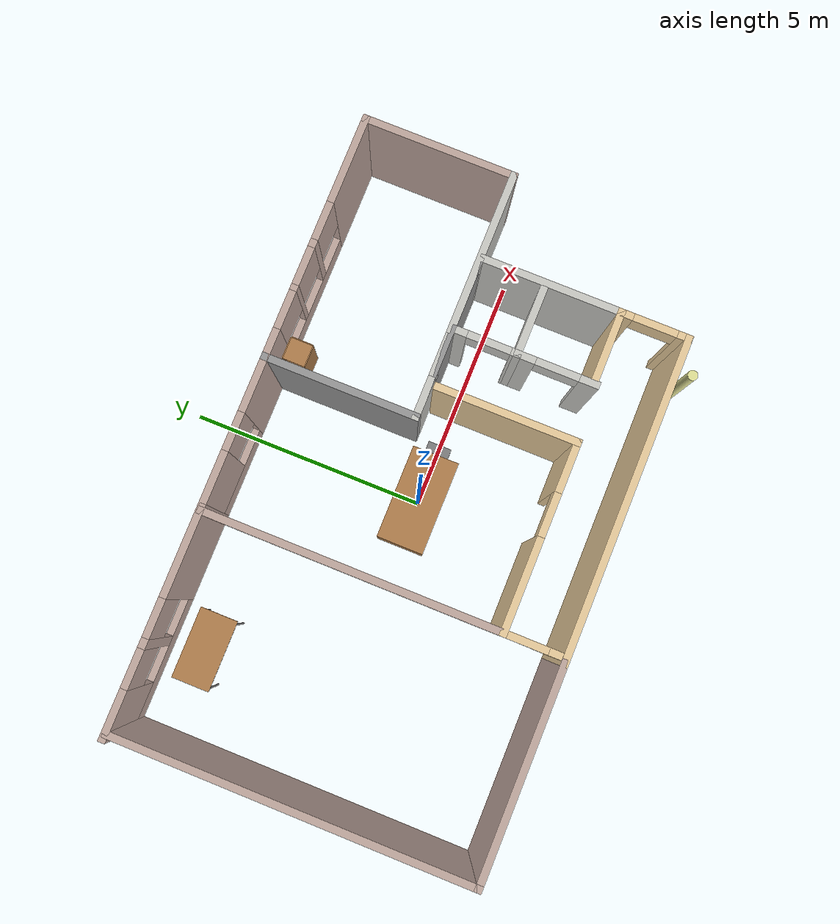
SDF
<sdf version="1.7">
 <world name="default">
  <physics type="ode">
   <max_step_size>0.001</max_step_size>
   <real_time_factor>1</real_time_factor>
   <real_time_update_rate>1000</real_time_update_rate>
  </physics>
  <gravity>0 0 -9.8</gravity>
  <scene><ambient>0.4 0.4 0.4 1</ambient><background>0.7 0.7 0.7 1</background><shadows>1</shadows></scene>
  <model name="ground_plane">
   <static>1</static>
   <link name="link">
    <collision name="collision">
     <geometry><plane><normal>0 0 1</normal><size>100 100</size></plane></geometry>
     <surface><friction><ode><mu>100</mu><mu2>50</mu2></ode></friction></surface>
    </collision>
   </link>
  </model>
  <model name="apartment24">
   <pose>0 -0 -3.2e-05 -9e-06 -0 -0</pose>
   <link name="Wall_0">
    <collision name="Wall_0_Collision">
     <geometry><box><size>6.75 0.15 2.5</size></box></geometry>
     <pose>0 0 1.25 0 -0 0</pose>
    </collision>
    <visual name="Wall_0_Visual">
     <pose>0 0 1.25 0 -0 0</pose>
     <geometry><box><size>6.75 0.15 2.5</size></box></geometry>
     <material>
      <script><uri>file://media/materials/scripts/gazebo.material</uri><name>Gazebo/Grey</name></script>
      <ambient>0.921569 0.807843 0.615686 1</ambient>
     </material>
     <meta><layer>0</layer></meta>
    </visual>
    <pose>1.34363 -3.68811 0 0 -0 0</pose>
    <inertial>
     <inertia><ixx>1</ixx><ixy>0</ixy><ixz>0</ixz><iyy>1</iyy><iyz>0</iyz><izz>1</izz></inertia>
     <mass>1</mass>
    </inertial>
   </link>
   <link name="Wall_1">
    <pose>4.64363 -2.99989 0 0 -0 1.5708</pose>
    <visual name="Wall_1_Visual_0">
     <pose>-0.611737 0 1.25 0 -0 0</pose>
     <geometry><box><size>0.302975 0.15 2.5</size></box></geometry>
     <material>
      <script><uri>file://media/materials/scripts/gazebo.material</uri><name>Gazebo/Grey</name></script>
      <ambient>0.921569 0.807843 0.615686 1</ambient>
     </material>
     <meta><layer>0</layer></meta>
    </visual>
    <collision name="Wall_1_Collision_0">
     <geometry><box><size>0.302975 0.15 2.5</size></box></geometry>
     <pose>-0.611737 0 1.25 0 -0 0</pose>
    </collision>
    <visual name="Wall_1_Visual_1">
     <pose>0.601488 0 1.25 0 -0 0</pose>
     <geometry><box><size>0.323475 0.15 2.5</size></box></geometry>
     <material>
      <script><uri>file://media/materials/scripts/gazebo.material</uri><name>Gazebo/Grey</name></script>
      <ambient>0.921569 0.807843 0.615686 1</ambient>
     </material>
     <meta><layer>0</layer></meta>
    </visual>
    <collision name="Wall_1_Collision_1">
     <geometry><box><size>0.323475 0.15 2.5</size></box></geometry>
     <pose>0.601488 0 1.25 0 -0 0</pose>
    </collision>
    <visual name="Wall_1_Visual_2">
     <pose>-0.01025 0 2.25 0 -0 0</pose>
     <geometry><box><size>0.9 0.15 0.5</size></box></geometry>
     <material>
      <script><uri>file://media/materials/scripts/gazebo.material</uri><name>Gazebo/Grey</name></script>
      <ambient>0.921569 0.807843 0.615686 1</ambient>
     </material>
     <meta><layer>0</layer></meta>
    </visual>
    <collision name="Wall_1_Collision_2">
     <geometry><box><size>0.9 0.15 0.5</size></box></geometry>
     <pose>-0.01025 0 2.25 0 -0 0</pose>
    </collision>
    <inertial>
     <inertia><ixx>1</ixx><ixy>0</ixy><ixz>0</ixz><iyy>1</iyy><iyz>0</iyz><izz>1</izz></inertia>
     <mass>1</mass>
    </inertial>
   </link>
   <link name="Wall_10">
    <pose>3.15 -1.56189 0 0 -0 -1.5708</pose>
    <visual name="Wall_10_Visual_0">
     <pose>-0.652525 0 1.25 0 -0 0</pose>
     <geometry><box><size>0.44495 0.15 2.5</size></box></geometry>
     <material>
      <script><uri>file://media/materials/scripts/gazebo.material</uri><name>Gazebo/CeilingTiled</name></script>
      <ambient>1 1 1 1</ambient>
     </material>
     <meta><layer>0</layer></meta>
    </visual>
    <collision name="Wall_10_Collision_0">
     <geometry><box><size>0.44495 0.15 2.5</size></box></geometry>
     <pose>-0.652525 0 1.25 0 -0 0</pose>
    </collision>
    <visual name="Wall_10_Visual_1">
     <pose>0.672475 0 1.25 0 -0 0</pose>
     <geometry><box><size>0.40505 0.15 2.5</size></box></geometry>
     <material>
      <script><uri>file://media/materials/scripts/gazebo.material</uri><name>Gazebo/CeilingTiled</name></script>
      <ambient>1 1 1 1</ambient>
     </material>
     <meta><layer>0</layer></meta>
    </visual>
    <collision name="Wall_10_Collision_1">
     <geometry><box><size>0.40505 0.15 2.5</size></box></geometry>
     <pose>0.672475 0 1.25 0 -0 0</pose>
    </collision>
    <visual name="Wall_10_Visual_2">
     <pose>0.01995 0 2.25 0 -0 0</pose>
     <geometry><box><size>0.9 0.15 0.5</size></box></geometry>
     <material>
      <script><uri>file://media/materials/scripts/gazebo.material</uri><name>Gazebo/CeilingTiled</name></script>
      <ambient>1 1 1 1</ambient>
     </material>
     <meta><layer>0</layer></meta>
    </visual>
    <collision name="Wall_10_Collision_2">
     <geometry><box><size>0.9 0.15 0.5</size></box></geometry>
     <pose>0.01995 0 2.25 0 -0 0</pose>
    </collision>
    <inertial>
     <inertia><ixx>1</ixx><ixy>0</ixy><ixz>0</ixz><iyy>1</iyy><iyz>0</iyz><izz>1</izz></inertia>
     <mass>1</mass>
    </inertial>
   </link>
   <link name="Wall_12">
    <collision name="Wall_12_Collision">
     <geometry><box><size>2 0.15 2.5</size></box></geometry>
     <pose>0 0 1.25 0 -0 0</pose>
    </collision>
    <visual name="Wall_12_Visual">
     <pose>0 0 1.25 0 -0 0</pose>
     <geometry><box><size>2 0.15 2.5</size></box></geometry>
     <material>
      <script><uri>file://media/materials/scripts/gazebo.material</uri><name>Gazebo/Grey</name></script>
      <ambient>1 1 1 1</ambient>
     </material>
     <meta><layer>0</layer></meta>
    </visual>
    <pose>2.225 0.588112 0 0 -0 3.14159</pose>
    <inertial>
     <inertia><ixx>1</ixx><ixy>0</ixy><ixz>0</ixz><iyy>1</iyy><iyz>0</iyz><izz>1</izz></inertia>
     <mass>1</mass>
    </inertial>
   </link>
   <link name="Wall_13">
    <pose>3.85 0.588112 0 0 -0 0</pose>
    <visual name="Wall_13_Visual_0">
     <pose>-2.17131 0 1.25 0 -0 0</pose>
     <geometry><box><size>0.907375 0.15 2.5</size></box></geometry>
     <material>
      <script><uri>file://media/materials/scripts/gazebo.material</uri><name>Gazebo/CeilingTiled</name></script>
      <ambient>0.760784 0.662745 0.627451 1</ambient>
     </material>
     <meta><layer>0</layer></meta>
    </visual>
    <collision name="Wall_13_Collision_0">
     <geometry><box><size>0.907375 0.15 2.5</size></box></geometry>
     <pose>-2.17131 0 1.25 0 -0 0</pose>
    </collision>
    <visual name="Wall_13_Visual_1">
     <pose>0.903687 0 1.25 0 -0 0</pose>
     <geometry><box><size>3.44263 0.15 2.5</size></box></geometry>
     <material>
      <script><uri>file://media/materials/scripts/gazebo.material</uri><name>Gazebo/CeilingTiled</name></script>
      <ambient>0.760784 0.662745 0.627451 1</ambient>
     </material>
     <meta><layer>0</layer></meta>
    </visual>
    <collision name="Wall_13_Collision_1">
     <geometry><box><size>3.44263 0.15 2.5</size></box></geometry>
     <pose>0.903687 0 1.25 0 -0 0</pose>
    </collision>
    <visual name="Wall_13_Visual_2">
     <pose>-1.26763 0 2.25 0 -0 0</pose>
     <geometry><box><size>0.9 0.15 0.5</size></box></geometry>
     <material>
      <script><uri>file://media/materials/scripts/gazebo.material</uri><name>Gazebo/CeilingTiled</name></script>
      <ambient>0.760784 0.662745 0.627451 1</ambient>
     </material>
     <meta><layer>0</layer></meta>
    </visual>
    <collision name="Wall_13_Collision_2">
     <geometry><box><size>0.9 0.15 0.5</size></box></geometry>
     <pose>-1.26763 0 2.25 0 -0 0</pose>
    </collision>
    <inertial>
     <inertia><ixx>1</ixx><ixy>0</ixy><ixz>0</ixz><iyy>1</iyy><iyz>0</iyz><izz>1</izz></inertia>
     <mass>1</mass>
    </inertial>
   </link>
   <link name="Wall_15">
    <collision name="Wall_15_Collision">
     <geometry><box><size>3.25 0.15 2.5</size></box></geometry>
     <pose>0 0 1.25 0 -0 0</pose>
    </collision>
    <visual name="Wall_15_Visual">
     <pose>0 0 1.25 0 -0 0</pose>
     <geometry><box><size>3.25 0.15 2.5</size></box></geometry>
     <material>
      <script><uri>file://media/materials/scripts/gazebo.material</uri><name>Gazebo/Grey</name></script>
      <ambient>0.760784 0.662745 0.627451 1</ambient>
     </material>
     <meta><layer>0</layer></meta>
    </visual>
    <pose>6.4 2.13811 0 0 -0 1.5708</pose>
    <inertial>
     <inertia><ixx>1</ixx><ixy>0</ixy><ixz>0</ixz><iyy>1</iyy><iyz>0</iyz><izz>1</izz></inertia>
     <mass>1</mass>
    </inertial>
   </link>
   <link name="Wall_16">
    <pose>3.85 3.68811 0 0 -0 3.14159</pose>
    <visual name="Wall_16_Visual_0">
     <pose>-1.6788 0 1.25 0 -0 0</pose>
     <geometry><box><size>1.8924 0.15 2.5</size></box></geometry>
     <material>
      <script><uri>file://media/materials/scripts/gazebo.material</uri><name>Gazebo/Grey</name></script>
      <ambient>0.760784 0.662745 0.627451 1</ambient>
     </material>
     <meta><layer>0</layer></meta>
    </visual>
    <collision name="Wall_16_Collision_0">
     <geometry><box><size>1.8924 0.15 2.5</size></box></geometry>
     <pose>-1.6788 0 1.25 0 -0 0</pose>
    </collision>
    <visual name="Wall_16_Visual_1">
     <pose>0.9462 0 0.25 0 -0 0</pose>
     <geometry><box><size>3.3576 0.15 0.5</size></box></geometry>
     <material>
      <script><uri>file://media/materials/scripts/gazebo.material</uri><name>Gazebo/Grey</name></script>
      <ambient>0.760784 0.662745 0.627451 1</ambient>
     </material>
     <meta><layer>0</layer></meta>
    </visual>
    <collision name="Wall_16_Collision_1">
     <geometry><box><size>3.3576 0.15 0.5</size></box></geometry>
     <pose>0.9462 0 0.25 0 -0 0</pose>
    </collision>
    <visual name="Wall_16_Visual_2">
     <pose>0.150113 0 1.5 0 -0 0</pose>
     <geometry><box><size>0.165425 0.15 2</size></box></geometry>
     <material>
      <script><uri>file://media/materials/scripts/gazebo.material</uri><name>Gazebo/Grey</name></script>
      <ambient>0.760784 0.662745 0.627451 1</ambient>
     </material>
     <meta><layer>0</layer></meta>
    </visual>
    <collision name="Wall_16_Collision_2">
     <geometry><box><size>0.165425 0.15 2</size></box></geometry>
     <pose>0.150113 0 1.5 0 -0 0</pose>
    </collision>
    <visual name="Wall_16_Visual_3">
     <pose>1.0957 0 1.5 0 -0 0</pose>
     <geometry><box><size>0.12575 0.15 2</size></box></geometry>
     <material>
      <script><uri>file://media/materials/scripts/gazebo.material</uri><name>Gazebo/Grey</name></script>
      <ambient>0.760784 0.662745 0.627451 1</ambient>
     </material>
     <meta><layer>0</layer></meta>
    </visual>
    <collision name="Wall_16_Collision_3">
     <geometry><box><size>0.12575 0.15 2</size></box></geometry>
     <pose>1.0957 0 1.5 0 -0 0</pose>
    </collision>
    <visual name="Wall_16_Visual_4">
     <pose>2.29179 0 1.5 0 -0 0</pose>
     <geometry><box><size>0.666425 0.15 2</size></box></geometry>
     <material>
      <script><uri>file://media/materials/scripts/gazebo.material</uri><name>Gazebo/Grey</name></script>
      <ambient>0.760784 0.662745 0.627451 1</ambient>
     </material>
     <meta><layer>0</layer></meta>
    </visual>
    <collision name="Wall_16_Collision_4">
     <geometry><box><size>0.666425 0.15 2</size></box></geometry>
     <pose>2.29179 0 1.5 0 -0 0</pose>
    </collision>
    <visual name="Wall_16_Visual_5">
     <pose>-0.3326 0 1.9 0 -0 0</pose>
     <geometry><box><size>0.8 0.15 1.2</size></box></geometry>
     <material>
      <script><uri>file://media/materials/scripts/gazebo.material</uri><name>Gazebo/Grey</name></script>
      <ambient>0.760784 0.662745 0.627451 1</ambient>
     </material>
     <meta><layer>0</layer></meta>
    </visual>
    <collision name="Wall_16_Collision_5">
     <geometry><box><size>0.8 0.15 1.2</size></box></geometry>
     <pose>-0.3326 0 1.9 0 -0 0</pose>
    </collision>
    <visual name="Wall_16_Visual_6">
     <pose>0.632825 0 1.9 0 -0 0</pose>
     <geometry><box><size>0.8 0.15 1.2</size></box></geometry>
     <material>
      <script><uri>file://media/materials/scripts/gazebo.material</uri><name>Gazebo/Grey</name></script>
      <ambient>0.760784 0.662745 0.627451 1</ambient>
     </material>
     <meta><layer>0</layer></meta>
    </visual>
    <collision name="Wall_16_Collision_6">
     <geometry><box><size>0.8 0.15 1.2</size></box></geometry>
     <pose>0.632825 0 1.9 0 -0 0</pose>
    </collision>
    <visual name="Wall_16_Visual_7">
     <pose>1.55858 0 1.9 0 -0 0</pose>
     <geometry><box><size>0.8 0.15 1.2</size></box></geometry>
     <material>
      <script><uri>file://media/materials/scripts/gazebo.material</uri><name>Gazebo/Grey</name></script>
      <ambient>0.760784 0.662745 0.627451 1</ambient>
     </material>
     <meta><layer>0</layer></meta>
    </visual>
    <collision name="Wall_16_Collision_7">
     <geometry><box><size>0.8 0.15 1.2</size></box></geometry>
     <pose>1.55858 0 1.9 0 -0 0</pose>
    </collision>
    <inertial>
     <inertia><ixx>1</ixx><ixy>0</ixy><ixz>0</ixz><iyy>1</iyy><iyz>0</iyz><izz>1</izz></inertia>
     <mass>1</mass>
    </inertial>
   </link>
   <link name="Wall_17">
    <collision name="Wall_17_Collision">
     <geometry><box><size>3.25 0.15 2.5</size></box></geometry>
     <pose>0 0 1.25 0 -0 0</pose>
    </collision>
    <visual name="Wall_17_Visual">
     <pose>0 0 1.25 0 -0 0</pose>
     <geometry><box><size>3.25 0.15 2.5</size></box></geometry>
     <material>
      <script><uri>file://media/materials/scripts/gazebo.material</uri><name>Gazebo/Grey</name></script>
      <ambient>1 1 1 1</ambient>
     </material>
     <meta><layer>0</layer></meta>
    </visual>
    <pose>1.3 2.13811 0 0 -0 -1.5708</pose>
    <inertial>
     <inertia><ixx>1</ixx><ixy>0</ixy><ixz>0</ixz><iyy>1</iyy><iyz>0</iyz><izz>1</izz></inertia>
     <mass>1</mass>
    </inertial>
   </link>
   <link name="Wall_19">
    <collision name="Wall_19_Collision">
     <geometry><box><size>3 0.15 2.5</size></box></geometry>
     <pose>0 0 1.25 0 -0 0</pose>
    </collision>
    <visual name="Wall_19_Visual">
     <pose>0 0 1.25 0 -0 0</pose>
     <geometry><box><size>3 0.15 2.5</size></box></geometry>
     <material>
      <script><uri>file://media/materials/scripts/gazebo.material</uri><name>Gazebo/Grey</name></script>
      <ambient>0.921569 0.807843 0.615686 1</ambient>
     </material>
     <meta><layer>0</layer></meta>
    </visual>
    <pose>1.98725 -1.00986 0 0 -0 -1.5708</pose>
    <inertial>
     <inertia><ixx>1</ixx><ixy>0</ixy><ixz>0</ixz><iyy>1</iyy><iyz>0</iyz><izz>1</izz></inertia>
     <mass>1</mass>
    </inertial>
   </link>
   <link name="Wall_2">
    <collision name="Wall_2_Collision">
     <geometry><box><size>1.5 0.15 2.5</size></box></geometry>
     <pose>0 0 1.25 0 -0 0</pose>
    </collision>
    <visual name="Wall_2_Visual">
     <pose>0 0 1.25 0 -0 0</pose>
     <geometry><box><size>1.5 0.15 2.5</size></box></geometry>
     <material>
      <script><uri>file://media/materials/scripts/gazebo.material</uri><name>Gazebo/Grey</name></script>
      <ambient>0.921569 0.807843 0.615686 1</ambient>
     </material>
     <meta><layer>0</layer></meta>
    </visual>
    <pose>3.96862 -2.31166 0 0 -0 3.14159</pose>
    <inertial>
     <inertia><ixx>1</ixx><ixy>0</ixy><ixz>0</ixz><iyy>1</iyy><iyz>0</iyz><izz>1</izz></inertia>
     <mass>1</mass>
    </inertial>
   </link>
   <link name="Wall_20">
    <pose>0.06225 -2.43486 0 0 -0 3.14159</pose>
    <visual name="Wall_20_Visual_0">
     <pose>-1.4469 0 1.25 0 -0 0</pose>
     <geometry><box><size>1.1062 0.15 2.5</size></box></geometry>
     <material>
      <script><uri>file://media/materials/scripts/gazebo.material</uri><name>Gazebo/Grey</name></script>
      <ambient>0.921569 0.807843 0.615686 1</ambient>
     </material>
     <meta><layer>0</layer></meta>
    </visual>
    <collision name="Wall_20_Collision_0">
     <geometry><box><size>1.1062 0.15 2.5</size></box></geometry>
     <pose>-1.4469 0 1.25 0 -0 0</pose>
    </collision>
    <visual name="Wall_20_Visual_1">
     <pose>1.0031 0 1.25 0 -0 0</pose>
     <geometry><box><size>1.9938 0.15 2.5</size></box></geometry>
     <material>
      <script><uri>file://media/materials/scripts/gazebo.material</uri><name>Gazebo/Grey</name></script>
      <ambient>0.921569 0.807843 0.615686 1</ambient>
     </material>
     <meta><layer>0</layer></meta>
    </visual>
    <collision name="Wall_20_Collision_1">
     <geometry><box><size>1.9938 0.15 2.5</size></box></geometry>
     <pose>1.0031 0 1.25 0 -0 0</pose>
    </collision>
    <visual name="Wall_20_Visual_2">
     <pose>-0.4438 0 2.25 0 -0 0</pose>
     <geometry><box><size>0.9 0.15 0.5</size></box></geometry>
     <material>
      <script><uri>file://media/materials/scripts/gazebo.material</uri><name>Gazebo/Grey</name></script>
      <ambient>0.921569 0.807843 0.615686 1</ambient>
     </material>
     <meta><layer>0</layer></meta>
    </visual>
    <collision name="Wall_20_Collision_2">
     <geometry><box><size>0.9 0.15 0.5</size></box></geometry>
     <pose>-0.4438 0 2.25 0 -0 0</pose>
    </collision>
    <inertial>
     <inertia><ixx>1</ixx><ixy>0</ixy><ixz>0</ixz><iyy>1</iyy><iyz>0</iyz><izz>1</izz></inertia>
     <mass>1</mass>
    </inertial>
   </link>
   <link name="Wall_21">
    <collision name="Wall_21_Collision">
     <geometry><box><size>6.25 0.15 2.5</size></box></geometry>
     <pose>0 0 1.25 0 -0 0</pose>
    </collision>
    <visual name="Wall_21_Visual">
     <pose>0 0 1.25 0 -0 0</pose>
     <geometry><box><size>6.25 0.15 2.5</size></box></geometry>
     <material>
      <script><uri>file://media/materials/scripts/gazebo.material</uri><name>Gazebo/Grey</name></script>
      <ambient>0.760784 0.662745 0.627451 1</ambient>
     </material>
     <meta><layer>0</layer></meta>
    </visual>
    <pose>-1.86275 0.615137 0 0 -0 1.5708</pose>
    <inertial>
     <inertia><ixx>1</ixx><ixy>0</ixy><ixz>0</ixz><iyy>1</iyy><iyz>0</iyz><izz>1</izz></inertia>
     <mass>1</mass>
    </inertial>
   </link>
   <link name="Wall_23">
    <pose>-0.25 3.68811 0 0 -0 3.14159</pose>
    <visual name="Wall_23_Visual_0">
     <pose>-1.01361 0 1.25 0 -0 0</pose>
     <geometry><box><size>1.22277 0.15 2.5</size></box></geometry>
     <material>
      <script><uri>file://media/materials/scripts/gazebo.material</uri><name>Gazebo/Grey</name></script>
      <ambient>0.760784 0.662745 0.627451 1</ambient>
     </material>
     <meta><layer>0</layer></meta>
    </visual>
    <collision name="Wall_23_Collision_0">
     <geometry><box><size>1.22277 0.15 2.5</size></box></geometry>
     <pose>-1.01361 0 1.25 0 -0 0</pose>
    </collision>
    <visual name="Wall_23_Visual_1">
     <pose>0.611388 0 0.25 0 -0 0</pose>
     <geometry><box><size>2.02723 0.15 0.5</size></box></geometry>
     <material>
      <script><uri>file://media/materials/scripts/gazebo.material</uri><name>Gazebo/Grey</name></script>
      <ambient>0.760784 0.662745 0.627451 1</ambient>
     </material>
     <meta><layer>0</layer></meta>
    </visual>
    <collision name="Wall_23_Collision_1">
     <geometry><box><size>2.02723 0.15 0.5</size></box></geometry>
     <pose>0.611388 0 0.25 0 -0 0</pose>
    </collision>
    <visual name="Wall_23_Visual_2">
     <pose>1.01139 0 1.5 0 -0 0</pose>
     <geometry><box><size>1.22723 0.15 2</size></box></geometry>
     <material>
      <script><uri>file://media/materials/scripts/gazebo.material</uri><name>Gazebo/Grey</name></script>
      <ambient>0.760784 0.662745 0.627451 1</ambient>
     </material>
     <meta><layer>0</layer></meta>
    </visual>
    <collision name="Wall_23_Collision_2">
     <geometry><box><size>1.22723 0.15 2</size></box></geometry>
     <pose>1.01139 0 1.5 0 -0 0</pose>
    </collision>
    <visual name="Wall_23_Visual_3">
     <pose>-0.002225 0 1.9 0 -0 0</pose>
     <geometry><box><size>0.8 0.15 1.2</size></box></geometry>
     <material>
      <script><uri>file://media/materials/scripts/gazebo.material</uri><name>Gazebo/Grey</name></script>
      <ambient>0.760784 0.662745 0.627451 1</ambient>
     </material>
     <meta><layer>0</layer></meta>
    </visual>
    <collision name="Wall_23_Collision_3">
     <geometry><box><size>0.8 0.15 1.2</size></box></geometry>
     <pose>-0.002225 0 1.9 0 -0 0</pose>
    </collision>
    <inertial>
     <inertia><ixx>1</ixx><ixy>0</ixy><ixz>0</ixz><iyy>1</iyy><iyz>0</iyz><izz>1</izz></inertia>
     <mass>1</mass>
    </inertial>
   </link>
   <link name="Wall_25">
    <pose>-1.86275 -2.98486 0 0 -0 -1.5708</pose>
    <visual name="Wall_25_Visual_0">
     <pose>-0.584375 0 1.25 0 -0 0</pose>
     <geometry><box><size>0.08125 0.15 2.5</size></box></geometry>
     <material>
      <script><uri>file://media/materials/scripts/gazebo.material</uri><name>Gazebo/Grey</name></script>
      <ambient>0.921569 0.807843 0.615686 1</ambient>
     </material>
     <meta><layer>0</layer></meta>
    </visual>
    <collision name="Wall_25_Collision_0">
     <geometry><box><size>0.08125 0.15 2.5</size></box></geometry>
     <pose>-0.584375 0 1.25 0 -0 0</pose>
    </collision>
    <visual name="Wall_25_Visual_1">
     <pose>0.490625 0 1.25 0 -0 0</pose>
     <geometry><box><size>0.26875 0.15 2.5</size></box></geometry>
     <material>
      <script><uri>file://media/materials/scripts/gazebo.material</uri><name>Gazebo/Grey</name></script>
      <ambient>0.921569 0.807843 0.615686 1</ambient>
     </material>
     <meta><layer>0</layer></meta>
    </visual>
    <collision name="Wall_25_Collision_1">
     <geometry><box><size>0.26875 0.15 2.5</size></box></geometry>
     <pose>0.490625 0 1.25 0 -0 0</pose>
    </collision>
    <visual name="Wall_25_Visual_2">
     <pose>-0.09375 0 2.25 0 -0 0</pose>
     <geometry><box><size>0.9 0.15 0.5</size></box></geometry>
     <material>
      <script><uri>file://media/materials/scripts/gazebo.material</uri><name>Gazebo/Grey</name></script>
      <ambient>0.921569 0.807843 0.615686 1</ambient>
     </material>
     <meta><layer>0</layer></meta>
    </visual>
    <collision name="Wall_25_Collision_2">
     <geometry><box><size>0.9 0.15 0.5</size></box></geometry>
     <pose>-0.09375 0 2.25 0 -0 0</pose>
    </collision>
    <inertial>
     <inertia><ixx>1</ixx><ixy>0</ixy><ixz>0</ixz><iyy>1</iyy><iyz>0</iyz><izz>1</izz></inertia>
     <mass>1</mass>
    </inertial>
   </link>
   <link name="Wall_30">
    <collision name="Wall_30_Collision">
     <geometry><box><size>4.5 0.15 2.5</size></box></geometry>
     <pose>0 0 1.25 0 -0 0</pose>
    </collision>
    <visual name="Wall_30_Visual">
     <pose>0 0 1.25 0 -0 0</pose>
     <geometry><box><size>4.5 0.15 2.5</size></box></geometry>
     <material>
      <script><uri>file://media/materials/scripts/gazebo.material</uri><name>Gazebo/Grey</name></script>
      <ambient>0.760784 0.662745 0.627451 1</ambient>
     </material>
     <meta><layer>0</layer></meta>
    </visual>
    <pose>-4.13138 -3.68811 0 0 -0 3.14159</pose>
    <inertial>
     <inertia><ixx>1</ixx><ixy>0</ixy><ixz>0</ixz><iyy>1</iyy><iyz>0</iyz><izz>1</izz></inertia>
     <mass>1</mass>
    </inertial>
   </link>
   <link name="Wall_31">
    <collision name="Wall_31_Collision">
     <geometry><box><size>7.5 0.15 2.5</size></box></geometry>
     <pose>0 0 1.25 0 -0 0</pose>
    </collision>
    <visual name="Wall_31_Visual">
     <pose>0 0 1.25 0 -0 0</pose>
     <geometry><box><size>7.5 0.15 2.5</size></box></geometry>
     <material>
      <script><uri>file://media/materials/scripts/gazebo.material</uri><name>Gazebo/Grey</name></script>
      <ambient>0.760784 0.662745 0.627451 1</ambient>
     </material>
     <meta><layer>0</layer></meta>
    </visual>
    <pose>-6.30638 -0.013113 0 0 -0 1.5708</pose>
    <inertial>
     <inertia><ixx>1</ixx><ixy>0</ixy><ixz>0</ixz><iyy>1</iyy><iyz>0</iyz><izz>1</izz></inertia>
     <mass>1</mass>
    </inertial>
   </link>
   <link name="Wall_33">
    <pose>-4.1 3.68811 0 0 -0 3.14159</pose>
    <visual name="Wall_33_Visual_0">
     <pose>-1.42244 0 1.25 0 -0 0</pose>
     <geometry><box><size>1.90512 0.15 2.5</size></box></geometry>
     <material>
      <script><uri>file://media/materials/scripts/gazebo.material</uri><name>Gazebo/Grey</name></script>
      <ambient>0.760784 0.662745 0.627451 1</ambient>
     </material>
     <meta><layer>0</layer></meta>
    </visual>
    <collision name="Wall_33_Collision_0">
     <geometry><box><size>1.90512 0.15 2.5</size></box></geometry>
     <pose>-1.42244 0 1.25 0 -0 0</pose>
    </collision>
    <visual name="Wall_33_Visual_1">
     <pose>0.952562 0 0.25 0 -0 0</pose>
     <geometry><box><size>2.84488 0.15 0.5</size></box></geometry>
     <material>
      <script><uri>file://media/materials/scripts/gazebo.material</uri><name>Gazebo/Grey</name></script>
      <ambient>0.760784 0.662745 0.627451 1</ambient>
     </material>
     <meta><layer>0</layer></meta>
    </visual>
    <collision name="Wall_33_Collision_1">
     <geometry><box><size>2.84488 0.15 0.5</size></box></geometry>
     <pose>0.952562 0 0.25 0 -0 0</pose>
    </collision>
    <visual name="Wall_33_Visual_2">
     <pose>0.432675 0 1.5 0 -0 0</pose>
     <geometry><box><size>0.2051 0.15 2</size></box></geometry>
     <material>
      <script><uri>file://media/materials/scripts/gazebo.material</uri><name>Gazebo/Grey</name></script>
      <ambient>0.760784 0.662745 0.627451 1</ambient>
     </material>
     <meta><layer>0</layer></meta>
    </visual>
    <collision name="Wall_33_Collision_2">
     <geometry><box><size>0.2051 0.15 2</size></box></geometry>
     <pose>0.432675 0 1.5 0 -0 0</pose>
    </collision>
    <visual name="Wall_33_Visual_3">
     <pose>1.85511 0 1.5 0 -0 0</pose>
     <geometry><box><size>1.03977 0.15 2</size></box></geometry>
     <material>
      <script><uri>file://media/materials/scripts/gazebo.material</uri><name>Gazebo/Grey</name></script>
      <ambient>0.760784 0.662745 0.627451 1</ambient>
     </material>
     <meta><layer>0</layer></meta>
    </visual>
    <collision name="Wall_33_Collision_3">
     <geometry><box><size>1.03977 0.15 2</size></box></geometry>
     <pose>1.85511 0 1.5 0 -0 0</pose>
    </collision>
    <visual name="Wall_33_Visual_4">
     <pose>-0.069875 0 1.9 0 -0 0</pose>
     <geometry><box><size>0.8 0.15 1.2</size></box></geometry>
     <material>
      <script><uri>file://media/materials/scripts/gazebo.material</uri><name>Gazebo/Grey</name></script>
      <ambient>0.760784 0.662745 0.627451 1</ambient>
     </material>
     <meta><layer>0</layer></meta>
    </visual>
    <collision name="Wall_33_Collision_4">
     <geometry><box><size>0.8 0.15 1.2</size></box></geometry>
     <pose>-0.069875 0 1.9 0 -0 0</pose>
    </collision>
    <visual name="Wall_33_Visual_5">
     <pose>0.935225 0 1.9 0 -0 0</pose>
     <geometry><box><size>0.8 0.15 1.2</size></box></geometry>
     <material>
      <script><uri>file://media/materials/scripts/gazebo.material</uri><name>Gazebo/Grey</name></script>
      <ambient>0.760784 0.662745 0.627451 1</ambient>
     </material>
     <meta><layer>0</layer></meta>
    </visual>
    <collision name="Wall_33_Collision_5">
     <geometry><box><size>0.8 0.15 1.2</size></box></geometry>
     <pose>0.935225 0 1.9 0 -0 0</pose>
    </collision>
    <inertial>
     <inertia><ixx>1</ixx><ixy>0</ixy><ixz>0</ixz><iyy>1</iyy><iyz>0</iyz><izz>1</izz></inertia>
     <mass>1</mass>
    </inertial>
   </link>
   <link name="Wall_4">
    <collision name="Wall_4_Collision">
     <geometry><box><size>3 0.15 2.5</size></box></geometry>
     <pose>0 0 1.25 0 -0 0</pose>
    </collision>
    <visual name="Wall_4_Visual">
     <pose>0 0 1.25 0 -0 0</pose>
     <geometry><box><size>3 0.15 2.5</size></box></geometry>
     <material>
      <script><uri>file://media/materials/scripts/gazebo.material</uri><name>Gazebo/CeilingTiled</name></script>
      <ambient>1 1 1 1</ambient>
     </material>
     <meta><layer>0</layer></meta>
    </visual>
    <pose>4.64363 -0.899888 0 0 -0 1.5708</pose>
    <inertial>
     <inertia><ixx>1</ixx><ixy>0</ixy><ixz>0</ixz><iyy>1</iyy><iyz>0</iyz><izz>1</izz></inertia>
     <mass>1</mass>
    </inertial>
   </link>
   <link name="Wall_6">
    <collision name="Wall_6_Collision">
     <geometry><box><size>1.5 0.15 2.5</size></box></geometry>
     <pose>0 0 1.25 0 -0 0</pose>
    </collision>
    <visual name="Wall_6_Visual">
     <pose>0 0 1.25 0 -0 0</pose>
     <geometry><box><size>1.5 0.15 2.5</size></box></geometry>
     <material>
      <script><uri>file://media/materials/scripts/gazebo.material</uri><name>Gazebo/CeilingTiled</name></script>
      <ambient>1 1 1 1</ambient>
     </material>
     <meta><layer>0</layer></meta>
    </visual>
    <pose>3.825 -0.761887 0 0 -0 3.14159</pose>
    <inertial>
     <inertia><ixx>1</ixx><ixy>0</ixy><ixz>0</ixz><iyy>1</iyy><iyz>0</iyz><izz>1</izz></inertia>
     <mass>1</mass>
    </inertial>
   </link>
   <link name="Wall_7">
    <pose>3.15 -0.086887 0 0 -0 1.5708</pose>
    <visual name="Wall_7_Visual_0">
     <pose>-0.64655 0 1.25 0 -0 0</pose>
     <geometry><box><size>0.2069 0.15 2.5</size></box></geometry>
     <material>
      <script><uri>file://media/materials/scripts/gazebo.material</uri><name>Gazebo/CeilingTiled</name></script>
      <ambient>1 1 1 1</ambient>
     </material>
     <meta><layer>0</layer></meta>
    </visual>
    <collision name="Wall_7_Collision_0">
     <geometry><box><size>0.2069 0.15 2.5</size></box></geometry>
     <pose>-0.64655 0 1.25 0 -0 0</pose>
    </collision>
    <visual name="Wall_7_Visual_1">
     <pose>0.55345 0 1.25 0 -0 0</pose>
     <geometry><box><size>0.3931 0.15 2.5</size></box></geometry>
     <material>
      <script><uri>file://media/materials/scripts/gazebo.material</uri><name>Gazebo/CeilingTiled</name></script>
      <ambient>1 1 1 1</ambient>
     </material>
     <meta><layer>0</layer></meta>
    </visual>
    <collision name="Wall_7_Collision_1">
     <geometry><box><size>0.3931 0.15 2.5</size></box></geometry>
     <pose>0.55345 0 1.25 0 -0 0</pose>
    </collision>
    <visual name="Wall_7_Visual_2">
     <pose>-0.0931 0 2.25 0 -0 0</pose>
     <geometry><box><size>0.9 0.15 0.5</size></box></geometry>
     <material>
      <script><uri>file://media/materials/scripts/gazebo.material</uri><name>Gazebo/CeilingTiled</name></script>
      <ambient>1 1 1 1</ambient>
     </material>
     <meta><layer>0</layer></meta>
    </visual>
    <collision name="Wall_7_Collision_2">
     <geometry><box><size>0.9 0.15 0.5</size></box></geometry>
     <pose>-0.0931 0 2.25 0 -0 0</pose>
    </collision>
    <inertial>
     <inertia><ixx>1</ixx><ixy>0</ixy><ixz>0</ixz><iyy>1</iyy><iyz>0</iyz><izz>1</izz></inertia>
     <mass>1</mass>
    </inertial>
   </link>
   <link name="Wall_8">
    <collision name="Wall_8_Collision">
     <geometry><box><size>1.5 0.15 2.5</size></box></geometry>
     <pose>0 0 1.25 0 -0 0</pose>
    </collision>
    <visual name="Wall_8_Visual">
     <pose>0 0 1.25 0 -0 0</pose>
     <geometry><box><size>1.5 0.15 2.5</size></box></geometry>
     <material>
      <script><uri>file://media/materials/scripts/gazebo.material</uri><name>Gazebo/Grey</name></script>
      <ambient>1 1 1 1</ambient>
     </material>
     <meta><layer>0</layer></meta>
    </visual>
    <pose>3.825 0.588112 0 0 -0 0</pose>
    <inertial>
     <inertia><ixx>1</ixx><ixy>0</ixy><ixz>0</ixz><iyy>1</iyy><iyz>0</iyz><izz>1</izz></inertia>
     <mass>1</mass>
    </inertial>
   </link>
   <link name="floor">
    <collision name="floor_collision"><geometry><box><size>10 10 0.1</size></box></geometry></collision>
    <inertial>
     <inertia><ixx>1</ixx><ixy>0</ixy><ixz>0</ixz><iyy>1</iyy><iyz>0</iyz><izz>1</izz></inertia>
     <mass>1</mass>
    </inertial>
   </link>
   <link name="table">
    <pose>0 0 0.5 0 -0 0</pose>
    <visual name="table_visual">
     <geometry><box><size>2 1 0.75</size></box></geometry>
     <material><ambient>0.7 0.5 0.3 1</ambient></material>
    </visual>
    <collision name="table_collision"><geometry><box><size>2 1 0.75</size></box></geometry></collision>
    <inertial>
     <inertia><ixx>1</ixx><ixy>0</ixy><ixz>0</ixz><iyy>1</iyy><iyz>0</iyz><izz>1</izz></inertia>
     <mass>1</mass>
    </inertial>
   </link>
   <link name="lamp">
    <pose>4 -4 1.5 0 -0 0</pose>
    <visual name="lamp_visual">
     <geometry><cylinder><radius>0.1</radius><length>2</length></cylinder></geometry>
     <material><ambient>0.9 0.9 0.6 1</ambient></material>
    </visual>
    <collision name="lamp_collision">
     <geometry><cylinder><radius>0.1</radius><length>2</length></cylinder></geometry>
    </collision>
    <inertial>
     <inertia><ixx>1</ixx><ixy>0</ixy><ixz>0</ixz><iyy>1</iyy><iyz>0</iyz><izz>1</izz></inertia>
     <mass>1</mass>
    </inertial>
   </link>
   <link name="chair">
    <pose>1 0 0.3 0 -0 0</pose>
    <visual name="chair_visual">
     <geometry><box><size>0.5 0.5 0.6</size></box></geometry>
     <material><ambient>0.5 0.5 0.5 1</ambient></material>
    </visual>
    <collision name="chair_collision"><geometry><box><size>0.5 0.5 0.6</size></box></geometry></collision>
    <inertial>
     <inertia><ixx>1</ixx><ixy>0</ixy><ixz>0</ixz><iyy>1</iyy><iyz>0</iyz><izz>1</izz></inertia>
     <mass>1</mass>
    </inertial>
   </link>
  </model>
  <magnetic_field>6e-06 2.3e-05 -4.2e-05</magnetic_field>
  <atmosphere type="adiabatic"/>
  <audio><device>default</device></audio>
  <spherical_coordinates>
   <surface_model>EARTH_WGS84</surface_model>
   <latitude_deg>0</latitude_deg>
   <longitude_deg>0</longitude_deg>
   <elevation>0</elevation>
   <heading_deg>0</heading_deg>
  </spherical_coordinates>
  <model name="cabinet">
   <static>1</static>
   <link name="cabinet_bottom_plate">
    <inertial>
     <pose>0 0 -1 0 -0 0</pose>
     <inertia><ixx>2.05</ixx><ixy>0</ixy><ixz>0</ixz><iyy>2.05</iyy><iyz>0</iyz><izz>2.05</izz></inertia>
     <mass>25</mass>
    </inertial>
    <collision name="cabinet_bottom_plate_geom">
     <pose>0 0 0.01 0 -0 0</pose>
     <geometry><box><size>0.45 0.45 0.02</size></box></geometry>
    </collision>
    <visual name="cabinet_bottom_plate_geom_visual">
     <pose>0 0 0.01 0 -0 0</pose>
     <geometry><box><size>0.45 0.45 0.02</size></box></geometry>
     <material>
      <script><uri>file://media/materials/scripts/gazebo.material</uri><name>Gazebo/Wood</name></script>
     </material>
    </visual>
    <collision name="cabinet_bottom_plate_geom_cabinet_back_plate">
     <pose>0.235 0 0.51 0 -0 0</pose>
     <geometry><box><size>0.02 0.45 1.02</size></box></geometry>
    </collision>
    <visual name="cabinet_bottom_plate_geom_cabinet_back_plate_visual">
     <pose>0.235 0 0.51 0 -0 0</pose>
     <geometry><box><size>0.02 0.45 1.02</size></box></geometry>
     <material>
      <script><uri>file://media/materials/scripts/gazebo.material</uri><name>Gazebo/Wood</name></script>
     </material>
    </visual>
    <collision name="cabinet_bottom_plate_geom_cabinet_left_plate">
     <pose>0 0.235 0.51 0 -0 0</pose>
     <geometry><box><size>0.45 0.02 1.02</size></box></geometry>
    </collision>
    <visual name="cabinet_bottom_plate_geom_cabinet_left_plate_visual">
     <pose>0 0.235 0.51 0 -0 0</pose>
     <geometry><box><size>0.45 0.02 1.02</size></box></geometry>
     <material>
      <script><uri>file://media/materials/scripts/gazebo.material</uri><name>Gazebo/Wood</name></script>
     </material>
    </visual>
    <collision name="cabinet_bottom_plate_geom_cabinet_middle_plate">
     <pose>0 0 0.51 0 -0 0</pose>
     <geometry><box><size>0.45 0.45 0.02</size></box></geometry>
    </collision>
    <visual name="cabinet_bottom_plate_geom_cabinet_middle_plate_visual">
     <pose>0 0 0.51 0 -0 0</pose>
     <geometry><box><size>0.45 0.45 0.02</size></box></geometry>
     <material>
      <script><uri>file://media/materials/scripts/gazebo.material</uri><name>Gazebo/Wood</name></script>
     </material>
    </visual>
    <collision name="cabinet_bottom_plate_geom_cabinet_right_plate">
     <pose>0 -0.235 0.51 0 -0 0</pose>
     <geometry><box><size>0.45 0.02 1.02</size></box></geometry>
    </collision>
    <visual name="cabinet_bottom_plate_geom_cabinet_right_plate_visual">
     <pose>0 -0.235 0.51 0 -0 0</pose>
     <geometry><box><size>0.45 0.02 1.02</size></box></geometry>
     <material>
      <script><uri>file://media/materials/scripts/gazebo.material</uri><name>Gazebo/Wood</name></script>
     </material>
    </visual>
    <collision name="cabinet_bottom_plate_geom_cabinet_top_plate">
     <pose>0 0 1.01 0 -0 0</pose>
     <geometry><box><size>0.45 0.45 0.02</size></box></geometry>
    </collision>
    <visual name="cabinet_bottom_plate_geom_cabinet_top_plate_visual">
     <pose>0 0 1.01 0 -0 0</pose>
     <geometry><box><size>0.45 0.45 0.02</size></box></geometry>
     <material>
      <script><uri>file://media/materials/scripts/gazebo.material</uri><name>Gazebo/Wood</name></script>
     </material>
    </visual>
   </link>
   <pose>1.70478 3.22915 1 0 -0 0</pose>
  </model>
  <model name="table">
   <static>1</static>
   <link name="link">
    <collision name="surface">
     <pose>0 0 1 0 -0 0</pose>
     <geometry><box><size>1.5 0.8 0.03</size></box></geometry>
     <surface><friction><ode><mu>0.6</mu><mu2>0.6</mu2></ode></friction></surface>
    </collision>
    <visual name="visual1">
     <pose>0 0 1 0 -0 0</pose>
     <geometry><box><size>1.5 0.8 0.03</size></box></geometry>
     <material>
      <script><uri>file://media/materials/scripts/gazebo.material</uri><name>Gazebo/Wood</name></script>
     </material>
    </visual>
    <collision name="front_left_leg">
     <pose>0.68 0.38 0.5 0 -0 0</pose>
     <geometry><cylinder><radius>0.02</radius><length>1</length></cylinder></geometry>
    </collision>
    <visual name="front_left_leg">
     <pose>0.68 0.38 0.5 0 -0 0</pose>
     <geometry><cylinder><radius>0.02</radius><length>1</length></cylinder></geometry>
     <material>
      <script><uri>file://media/materials/scripts/gazebo.material</uri><name>Gazebo/Grey</name></script>
     </material>
    </visual>
    <collision name="front_right_leg">
     <pose>0.68 -0.38 0.5 0 -0 0</pose>
     <geometry><cylinder><radius>0.02</radius><length>1</length></cylinder></geometry>
    </collision>
    <visual name="front_right_leg">
     <pose>0.68 -0.38 0.5 0 -0 0</pose>
     <geometry><cylinder><radius>0.02</radius><length>1</length></cylinder></geometry>
     <material>
      <script><uri>file://media/materials/scripts/gazebo.material</uri><name>Gazebo/Grey</name></script>
     </material>
    </visual>
    <collision name="back_right_leg">
     <pose>-0.68 -0.38 0.5 0 -0 0</pose>
     <geometry><cylinder><radius>0.02</radius><length>1</length></cylinder></geometry>
    </collision>
    <visual name="back_right_leg">
     <pose>-0.68 -0.38 0.5 0 -0 0</pose>
     <geometry><cylinder><radius>0.02</radius><length>1</length></cylinder></geometry>
     <material>
      <script><uri>file://media/materials/scripts/gazebo.material</uri><name>Gazebo/Grey</name></script>
     </material>
    </visual>
    <collision name="back_left_leg">
     <pose>-0.68 0.38 0.5 0 -0 0</pose>
     <geometry><cylinder><radius>0.02</radius><length>1</length></cylinder></geometry>
    </collision>
    <visual name="back_left_leg">
     <pose>-0.68 0.38 0.5 0 -0 0</pose>
     <geometry><cylinder><radius>0.02</radius><length>1</length></cylinder></geometry>
     <material>
      <script><uri>file://media/materials/scripts/gazebo.material</uri><name>Gazebo/Grey</name></script>
     </material>
    </visual>
   </link>
   <pose>-4.37741 2.82572 0 0 -0 0</pose>
  </model>
 </world>
</sdf>
